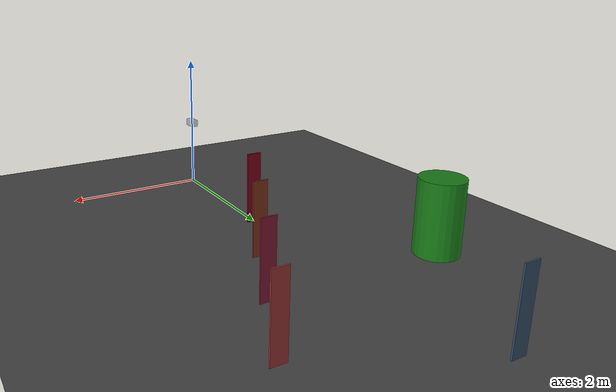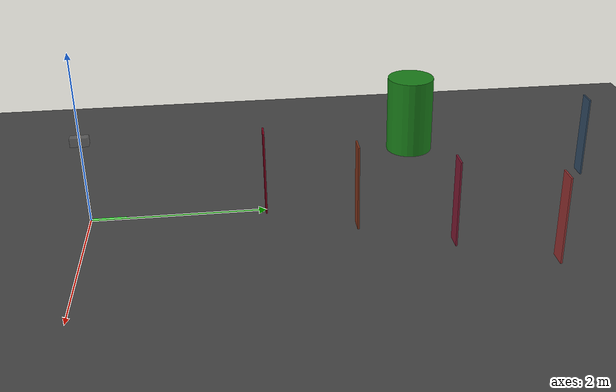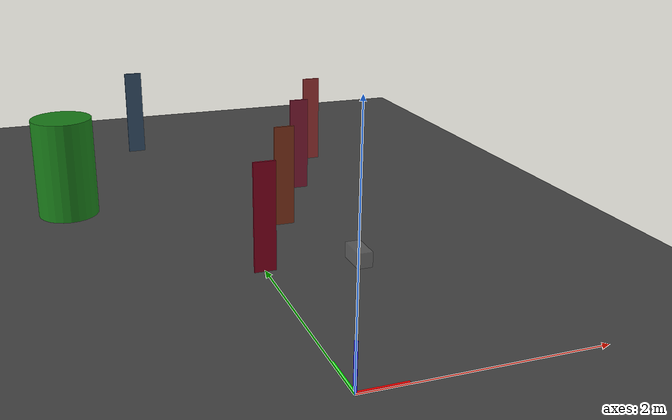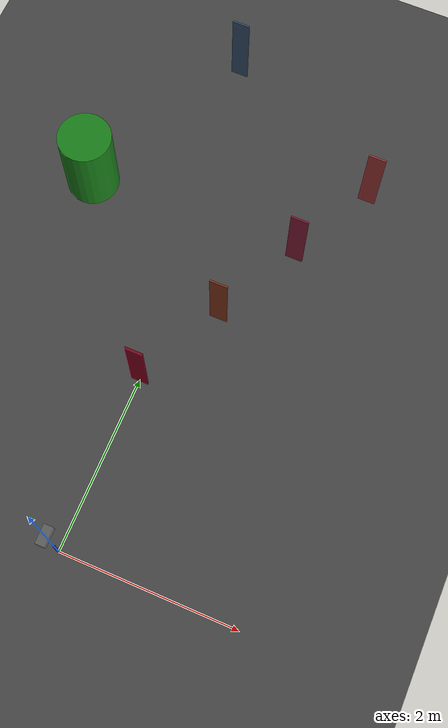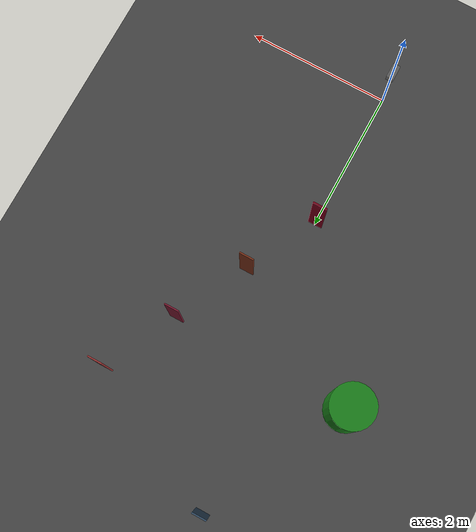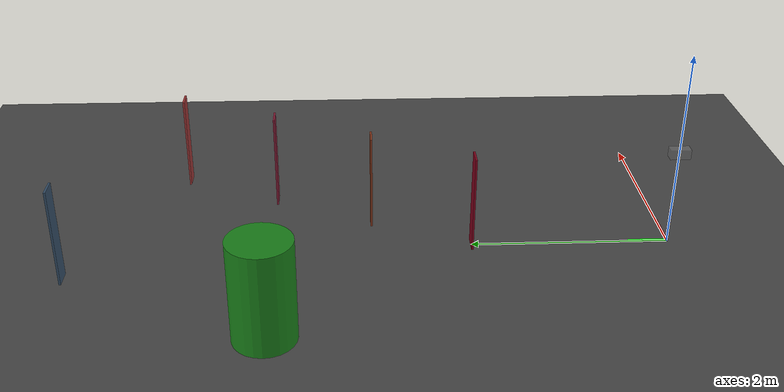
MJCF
<mujoco model="depth_camera_test">
  <option timestep="0.005"/>

  <option solver="CG" tolerance="1e-6"/>

  <size njmax="50" nconmax="10" nstack="2000"/>

  <visual>
    <global  offwidth="1280" offheight="720"/>
    <map znear="0.05" zfar="10.0"/>
    <rgba haze=".3 .3 .3 0.1" fog="0 0 0 0.1"/>
  </visual>

  <default>
    <joint type="hinge" pos="0 0 0" axis="0 0 1" damping="0.1"/>
    <motor ctrllimited="true" ctrlrange="-6 6"/>
  </default>

  <asset>
    <texture type="skybox" builtin="gradient" rgb1="0.6 0.6 0.8" rgb2="0 0 0" width="512" height="512"/>

    <texture name="texplane" type="2d" builtin="checker" rgb1=".25 .25 .25" rgb2=".3 .3 .3" width="512" height="512" mark="cross" markrgb=".8 .8 .8"/>

    <material name="matplane" reflectance="0.0" texture="texplane" texrepeat="1 1" texuniform="true"/>

  </asset>

  <worldbody>

    <geom name="floor" pos="0 0 0" size="0 0 1" type="plane" material="matplane"/>
    <light directional="true" diffuse=".8 .8 .8" specular=".1 .1 .1" pos="0 0 5" dir="0 0 -1"/>

    <body name="camera" pos="0 0 1" axisangle="1 0 0 90" mocap="true">
      <geom type="box" size="0.05 0.05 0.1" rgba="0.5 0.5 0.5 0.5"/>
      <camera name="camera" mode="fixed" fovy="45"/>
    </body>

    <body name="X_bar" pos="0.2 0 0.01" >
      <geom type="box" size="0.2 0.01 0.01" rgba="1 0 0 1"/>
    </body>
    <body name="Y_bar" pos="0 0.2 0.01" >
      <geom type="box" size="0.01 0.2 0.01" rgba="0 1 0 1"/>
    </body>
    <body name="Z_bar" pos="0.0 0 0.2" >
      <geom type="box" size="0.01 0.01 0.2" rgba="0 0 1 1"/>
    </body>

    <body name="barrier2" pos="-1.5 4 0.5">
      <geom type="cylinder" size="0.3 0.5" rgba="0.1 0.5 0.1 1"/>
    </body>

    <body name="target" pos="0 2 0.5" mocap="true">
      <geom type="box" size="0.1 0.01 0.5" rgba="0.5 0 0.1 1"/>
    </body>

    <body pos="0.5 3 0.5">
      <geom type="box" size="0.1 0.01 0.5" rgba="0.5 0.2 0.1 1"/>
    </body>

    <body pos="1 4 0.5">
      <geom type="box" size="0.1 0.01 0.5" rgba="0.5 0.1 0.2 1"/>
    </body>

    <body pos="1.5 5 0.5">
      <geom type="box" size="0.1 0.01 0.5" rgba="0.6 0.2 0.2 1"/>
    </body>

    <body pos="-0.5 6 0.5">
      <geom type="box" size="0.1 0.01 0.5" rgba="0.2 0.3 0.4 1"/>
    </body>

  </worldbody>

</mujoco>
